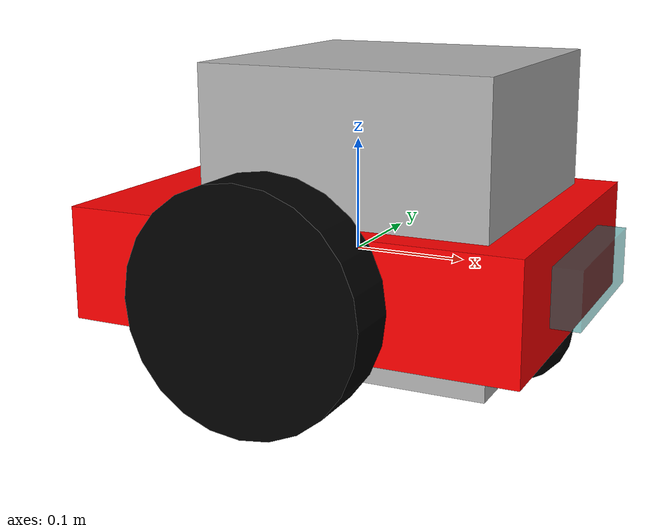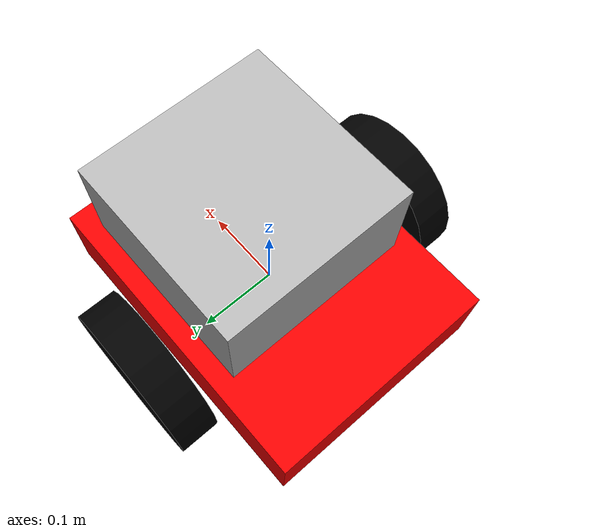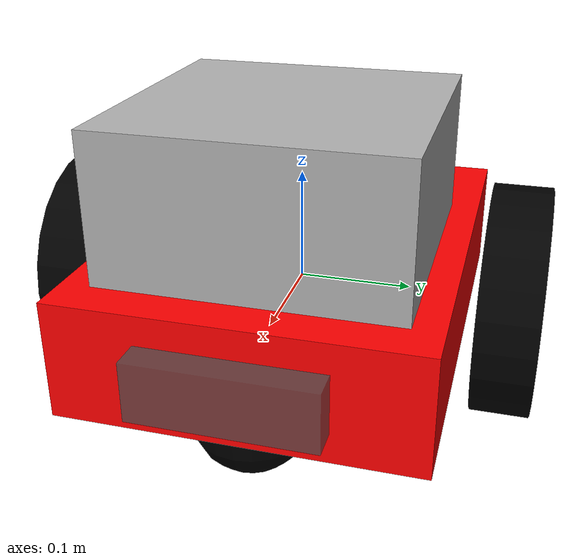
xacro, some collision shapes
<?xml version='1.0'?>

<robot name="udacity_bot" xmlns:xacro="http://www.ros.org/wiki/xacro">

  <xacro:include filename="$(find udacity_bot)/urdf/udacity_bot.gazebo" />

  <material name="red">
    <color rgba="1 0 0 1"/>
  </material>
   <material name="black">
    <color rgba="0 0 0 1"/>
  </material>
     <material name="green">
    <color rgba="0 0.5 0.5 0.5"/>
  </material>

  <link name="robot_footprint"></link>

  <joint name="robot_footprint_joint" type="fixed">
    <origin xyz="0 0 0" rpy="0 0 0" />
    <parent link="robot_footprint"/>
    <child link="chassis" />
  </joint>

  <link name='chassis'>
    <pose>0 0 0.1 0 0 0</pose>

    <inertial>
      <mass value="15.0"/>
      <origin xyz="0.0 0 0" rpy=" 0 0 0"/>
      <inertia
          ixx="0.1" ixy="0" ixz="0"
          iyy="0.1" iyz="0"
          izz="0.1"
      />
    </inertial>

    <collision name='collision'>
      <origin xyz="0 0 0" rpy=" 0 0 0"/>
      <geometry>
        <box size=".4 .3 .1"/>
      </geometry>
    </collision>

    <visual name='visual'>
      <origin xyz="0 0 0" rpy=" 0 0 0"/>
      <geometry>
        <box size=".4 .3 .1"/>
      </geometry>
      <material name="red"/>
    </visual>

  </link>

  <link name='back_caster'>
    <visual name='visual'>
      <origin xyz="0 0 0" rpy=" 0 0 0"/>
      <geometry>
        <sphere radius="0.05"/>
      </geometry>
      <material name="black"/>
    </visual>

    <collision name='collision'>
      <origin xyz="0 0 0" rpy=" 0 0 0"/>
      <geometry>
        <sphere radius="0.0499"/>
      </geometry>
    </collision>

  </link>

  <joint type="fixed" name="back_caster_joint">
    <origin xyz="-0.15 0 -0.05" rpy=" 0 0 0"/>
    <child link="back_caster"/>
    <parent link="chassis"/>
  </joint>

  <link name='front_caster'>
    <visual name='visual'>
      <origin xyz="0 0 0" rpy=" 0 0 0"/>
      <geometry>
        <sphere radius="0.05"/>
      </geometry>
      <material name="black"/>
    </visual>

    <collision name='collision'>
      <origin xyz="0 0 0" rpy=" 0 0 0"/>
      <geometry>
        <sphere radius="0.0499"/>
      </geometry>
    </collision>

  </link>

  <joint type="fixed" name="front_caster_joint">
    <origin xyz="0.15 0 -0.05" rpy=" 0 0 0"/>
    <child link="front_caster"/>
    <parent link="chassis"/>
  </joint>

  <link name="left_wheel">
    <visual name="visual">
      <origin xyz="0 0 0" rpy="0 1.5707 1.5707"/>
      <geometry>
        <cylinder radius="0.1" length="0.05"/>
      </geometry>
      <material name="black"/>
    </visual>

    <collision name="collision">
      <origin xyz="0 0 0" rpy="0 1.5707 1.5707"/>
      <geometry>
        <cylinder radius="0.1" length="0.05"/>
      </geometry>
    </collision>

    <inertial>
      <mass value="5.0"/>
      <origin xyz="0.0 0 0" rpy=" 0 0 0"/>
      <inertia
          ixx="0.1" ixy="0" ixz="0"
          iyy="0.1" iyz="0"
          izz="0.1"
      />
    </inertial>
  </link>

  <joint type="continuous" name="left_wheel_hinge">
    <origin xyz="0 0.19 0" rpy="0 0 0"/>
    <child link="left_wheel"/>
    <parent link="chassis"/>
    <axis xyz="0 1 0" rpy="0 0 0"/>
    <limit effort="10000" velocity="1000"/>
    <joint_properties damping="1.0" friction="1.0"/>
  </joint>

  <link name="right_wheel">
    <visual name="visual">
      <origin xyz="0 0 0" rpy="0 1.5707 1.5707"/>
      <geometry>
        <cylinder radius="0.1" length="0.05"/>
      </geometry>
      <material name="black"/>
    </visual>

    <collision name="collision">
      <origin xyz="0 0 0" rpy="0 1.5707 1.5707"/>
      <geometry>
        <cylinder radius="0.1" length="0.05"/>
      </geometry>
    </collision>

    <inertial>
      <mass value="5.0"/>
      <origin xyz="0.0 0 0" rpy=" 0 0 0"/>
      <inertia
          ixx="0.1" ixy="0" ixz="0"
          iyy="0.1" iyz="0"
          izz="0.1"
      />
    </inertial>
  </link>

  <joint type="continuous" name="right_wheel_hinge">
    <origin xyz="0 -0.19 0" rpy="0 0 0"/>
    <child link="right_wheel"/>
    <parent link="chassis"/>
    <axis xyz="0 1 0" rpy="0 0 0"/>
    <limit effort="10000" velocity="1000"/>
    <joint_properties damping="1.0" friction="1.0"/>
  </joint>

  <link name="camera">
    <visual name="visual">
      <origin xyz="0 0 0" rpy="0 0 0"/>
      <geometry>
        <box size=".05 .15 .05"/>
      </geometry>
      <material name="green"/>
    </visual>

    <collision name="collision">
      <origin xyz="0 0 0" rpy="0 0 0"/>
      <geometry>
        <box size=".05 .15 .05"/>
      </geometry>
    </collision>

    <inertial>
      <mass value="0.1"/>
      <origin xyz="0.0 0 0" rpy=" 0 0 0"/>
      <inertia
          ixx="1e-6" ixy="0" ixz="0"
          iyy="1e-6" iyz="0"
          izz="1e-6"
      />
    </inertial>
  </link>

  <joint type="fixed" name="camera_joint">
    <origin xyz="0.2 0 0" rpy="0 0 0"/>
    <child link="camera"/>
    <parent link="chassis"/>
  </joint>

  <link name="hokuyo">
    <visual name="visual">
      <origin xyz="0.02 0 0" rpy="0 0 0"/>
      <geometry>
        <mesh filename="package://udacity_bot/meshes/hokuyo.dae"/>
      </geometry>
    </visual>

    <collision name="collision">
      <origin xyz="0.02 0 0" rpy="0 0 0"/>
      <geometry>
        <box size=".25 .25 .25"/>
      </geometry>
    </collision>

    <inertial>
      <mass value="0.1"/>
      <origin xyz="0.02 0 0" rpy=" 0 0 0"/>
      <inertia
          ixx="1e-6" ixy="0" ixz="0"
          iyy="1e-6" iyz="0"
          izz="1e-6"
      />
    </inertial>
  </link>

  <joint type="fixed" name="hokuyo_joint">
    <origin xyz="0.02 0 .05" rpy="0 0 0"/>
    <child link="hokuyo"/>
    <parent link="chassis"/>
  </joint>

</robot>
